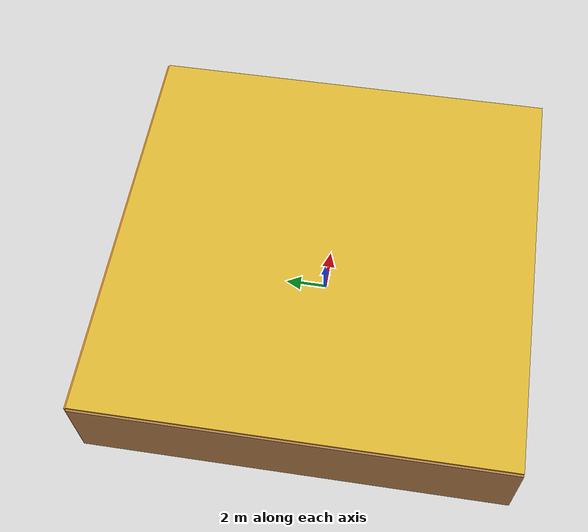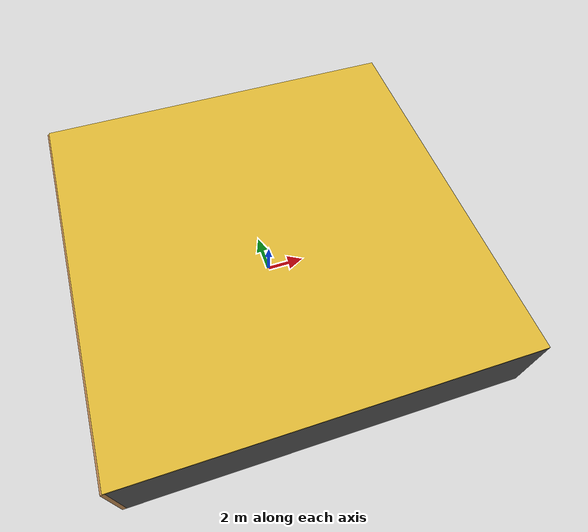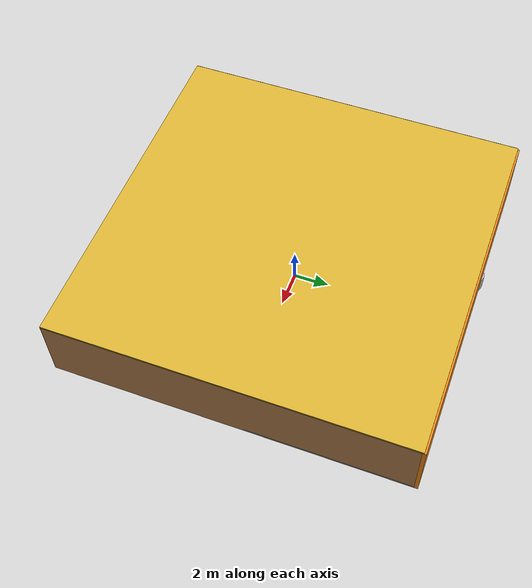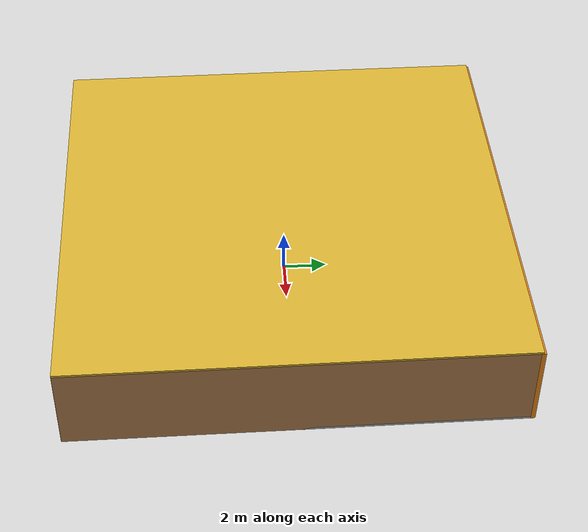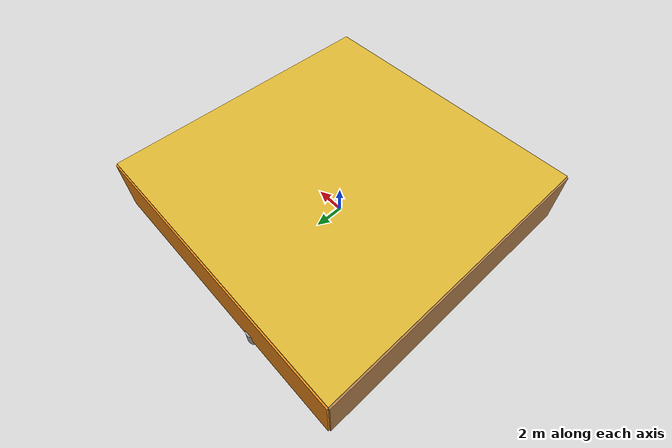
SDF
<sdf version="1.4">
 <world name="default">
  <physics type="ode">
   <max_step_size>0.001</max_step_size>
   <real_time_factor>1</real_time_factor>
   <real_time_update_rate>1000</real_time_update_rate>
   <gravity>0 0 -9.8</gravity>
  </physics>
  <scene><ambient>0.4 0.4 0.4 1</ambient><background>0.7 0.7 0.7 1</background><shadows>1</shadows></scene>
  <model name="Surrounding">
   <static>1</static>
   <link name="Ceiling">
    <collision name="Ceiling_Collision"><geometry><box><size>20 20 0.1</size></box></geometry></collision>
    <visual name="Ceiling_Visual">
     <geometry><box><size>20 20 0.1</size></box></geometry>
     <material>
      <script><uri>file://media/materials/scripts/gazebo.material</uri><name>Gazebo/Gold</name></script>
     </material>
    </visual>
    <pose>0 0 4.05 0 0 0</pose>
   </link>
   <link name="Wall_South">
    <collision name="Wall_South_Collision">
     <geometry><box><size>20 0 4</size></box></geometry>
     <pose>0 0 2 0 -0 0</pose>
    </collision>
    <visual name="Wall_South_Visual">
     <pose>0 0 2 0 -0 0</pose>
     <geometry><box><size>20 0 4</size></box></geometry>
     <material>
      <script><uri>file://media/materials/scripts/gazebo.material</uri><name>Gazebo/Road</name></script>
     </material>
    </visual>
    <velocity_decay><linear>0</linear><angular>0</angular></velocity_decay>
    <pose>0 -10 0 0 -0 0</pose>
   </link>
   <link name="Wall_East">
    <collision name="Wall_21_Collision">
     <geometry><box><size>20 0 4</size></box></geometry>
     <pose>0 0 2 0 -0 0</pose>
    </collision>
    <visual name="Wall_21_Visual">
     <pose>0 0 2 0 -0 0</pose>
     <geometry><box><size>20 0 4</size></box></geometry>
     <material>
      <script><uri>file://media/materials/scripts/gazebo.material</uri><name>Gazebo/Wood</name></script>
     </material>
    </visual>
    <velocity_decay><linear>0</linear><angular>0</angular></velocity_decay>
    <pose>10 0 0 0 -0 1.5708</pose>
   </link>
   <link name="Wall_North">
    <collision name="Wall_22_Collision">
     <geometry><box><size>20 0.2 4</size></box></geometry>
     <pose>0 0 2 0 -0 0</pose>
    </collision>
    <visual name="Wall_22_Visual">
     <pose>0 0 2 0 -0 0</pose>
     <geometry><box><size>20 0.2 4</size></box></geometry>
     <material>
      <script><uri>file://media/materials/scripts/gazebo.material</uri><name>Gazebo/Orange</name></script>
     </material>
    </visual>
    <velocity_decay><linear>0</linear><angular>0</angular></velocity_decay>
    <pose>0 10 0 0 -0 0</pose>
   </link>
   <link name="Wall_West">
    <collision name="Wall_23_Collision">
     <geometry><box><size>20 0.2 4</size></box></geometry>
     <pose>0 0 2 0 -0 0</pose>
    </collision>
    <visual name="Wall_23_Visual">
     <pose>0 0 2 0 -0 0</pose>
     <geometry><box><size>20 0.2 4</size></box></geometry>
     <material>
      <script><uri>file://media/materials/scripts/gazebo.material</uri><name>Gazebo/WoodFloor</name></script>
     </material>
    </visual>
    <velocity_decay><linear>0</linear><angular>0</angular></velocity_decay>
    <pose>-10 0 0 0 0 -1.5708</pose>
   </link>
   <link name="Ground_link">
    <collision name="collision">
     <pose>0 0 .05 0 -0 0</pose>
     <geometry><box><size>20 20 0.1</size></box></geometry>
    </collision>
    <visual name="visual">
     <pose>0 0 .05 0 -0 0</pose>
     <geometry><box><size>20 20 0.1</size></box></geometry>
     <material>
      <script><uri>file://media/materials/scripts/gazebo.material</uri><name>Gazebo/LightOff</name></script>
     </material>
    </visual>
   </link>
   <static>1</static>
  </model>
  <spherical_coordinates>
   <surface_model>EARTH_WGS84</surface_model>
   <latitude_deg>0</latitude_deg>
   <longitude_deg>0</longitude_deg>
   <elevation>0</elevation>
   <heading_deg>0</heading_deg>
  </spherical_coordinates>
  <light name="lightball_0" type="diffuse">
   <diffuse>0.8 0.8 0.8 1</diffuse>
   <specular>0.2 0.2 0.2 1</specular>
   <attenuation>
    <range>100</range>
    <constant>0.7</constant>
    <linear>0.01</linear>
    <quadratic>0.001</quadratic>
   </attenuation>
   <direction>-0.5 0.1 -0.9</direction>
   <pose>-4.8512542708 2.34274263979 1.42264361388 0 0 0</pose>
  </light>
  <include>
   <uri>model://textured_shapes</uri>
   <pose>-2.49579837079 8.38496481314 0 0 0 0.493686292845</pose>
  </include>
  <include>
   <uri>model://robocup_3Dsim_goal</uri>
   <pose>3.64684124709 -8.49933539073 0 0 0 2.86019720703</pose>
  </include>
  <include>
   <uri>model://robocup_3Dsim_goal</uri>
   <pose>4.17585126997 -3.71238143774 0 0 0 2.7336269875</pose>
  </include>
  <include><uri>model://table</uri><pose>3.74402273598 3.39364367079 0 0 0 1.29921858857</pose></include>
  <include>
   <uri>model://textured_shapes</uri>
   <pose>7.15573258531 -1.16906318144 0 0 0 3.13433477314</pose>
  </include>
 </world>
</sdf>

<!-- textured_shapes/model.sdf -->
<sdf version="1.6">
  <model name="textured_shapes">
    <pose>0 0 0.5 0 0 0</pose>
    <link name="box">
      <pose>0 -1.5 0 0 0 0</pose>
      <collision name="collision">
        <geometry>
          <box>
            <size>1 1 1</size>
          </box>
        </geometry>
      </collision>
      <visual name="visual">
        <geometry>
          <box>
            <size>1 1 1</size>
          </box>
        </geometry>
        <material>
          <script>
            <uri>model://../model_source/models/textured_shapes/materials/scripts</uri>
            <uri>model://../model_source/models/textured_shapes/materials/textures</uri>
            <name>TexturedShape/Squares</name>
          </script>
        </material>
      </visual>
    </link>
    <link name="sphere">
      <collision name="collision">
        <geometry>
          <sphere>
            <radius>0.5</radius>
          </sphere>
        </geometry>
      </collision>
      <visual name="visual">
        <geometry>
          <sphere>
            <radius>0.5</radius>
          </sphere>
        </geometry>
        <material>
          <script>
            <uri>model://../model_source/models/textured_shapes/materials/scripts</uri>
            <uri>model://../model_source/models/textured_shapes/materials/textures</uri>
            <name>TexturedShape/Squares</name>
          </script>
        </material>
      </visual>
    </link>
    <link name="cylinder">
      <pose>0 1.5 0 0 0 0</pose>
      <collision name="collision">
        <geometry>
          <cylinder>
            <radius>0.5</radius>
            <length>1</length>
          </cylinder>
        </geometry>
      </collision>
      <visual name="visual">
        <geometry>
          <cylinder>
            <radius>0.5</radius>
            <length>1</length>
          </cylinder>
        </geometry>
        <material>
          <script>
            <uri>model://../model_source/models/textured_shapes/materials/scripts</uri>
            <uri>model://../model_source/models/textured_shapes/materials/textures</uri>
            <name>TexturedShape/Squares</name>
          </script>
        </material>
      </visual>
    </link>
  </model>
</sdf>

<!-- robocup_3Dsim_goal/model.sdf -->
<sdf version="1.5">
  <model name="robocup_3d_goal">
    <static>true</static>
    <link name="left_post">
      <pose>0 1.05 0.45 0 0 0</pose>
      <collision name="collision">
        <geometry>
          <cylinder>
            <radius>0.05</radius>
            <length>0.9</length>
          </cylinder>
        </geometry>
      </collision>
      <visual name="visual">
        <geometry>
          <cylinder>
            <radius>0.05</radius>
            <length>0.9</length>
          </cylinder>
        </geometry>
        <material>
          <script>
            <uri>file://media/materials/scripts/gazebo.material</uri>
            <name>Gazebo/ZincYellow</name>
          </script>
        </material>
      </visual>
    </link>
    <link name="left_support_horiz_lower">
      <pose>0.30 1.05 0.01 0 0 0</pose>
      <collision name="collision">
        <geometry>
          <box>
            <size>0.50 0.02 0.02</size>
          </box>
        </geometry>
      </collision>
      <visual name="visual">
        <geometry>
          <box>
            <size>0.50 0.02 0.02</size>
          </box>
        </geometry>
        <material>
          <script>
            <uri>file://media/materials/scripts/gazebo.material</uri>
            <name>Gazebo/White</name>
          </script>
        </material>
      </visual>
    </link>
    <link name="left_support_horiz_upper">
      <pose>0.30 1.05 0.79 0 0 0</pose>
      <collision name="collision">
        <geometry>
          <box>
            <size>0.50 0.02 0.02</size>
          </box>
        </geometry>
      </collision>
      <visual name="visual">
        <geometry>
          <box>
            <size>0.50 0.02 0.02</size>
          </box>
        </geometry>
        <material>
          <script>
            <uri>file://media/materials/scripts/gazebo.material</uri>
            <name>Gazebo/White</name>
          </script>
        </material>
      </visual>
    </link>
    <link name="left_support_vertical">
      <pose>0.56 1.05 0.4 0 1.5708 0</pose>
      <collision name="collision">
        <geometry>
          <box>
            <size>0.80 0.02 0.02</size>
          </box>
        </geometry>
      </collision>
      <visual name="visual">
        <geometry>
          <box>
            <size>0.80 0.02 0.02</size>
          </box>
        </geometry>
        <material>
          <script>
            <uri>file://media/materials/scripts/gazebo.material</uri>
            <name>Gazebo/White</name>
          </script>
        </material>
      </visual>
    </link>
    <link name="right_support_horiz_lower">
      <pose>0.30 -1.05 0.01 0 0 0</pose>
      <collision name="collision">
        <geometry>
          <box>
            <size>0.50 0.02 0.02</size>
          </box>
        </geometry>
      </collision>
      <visual name="visual">
        <geometry>
          <box>
            <size>0.50 0.02 0.02</size>
          </box>
        </geometry>
        <material>
          <script>
            <uri>file://media/materials/scripts/gazebo.material</uri>
            <name>Gazebo/White</name>
          </script>
        </material>
      </visual>
    </link>
    <link name="right_support_horiz_upper">
      <pose>0.30 -1.05 0.79 0 0 0</pose>
      <collision name="collision">
        <geometry>
          <box>
            <size>0.50 0.02 0.02</size>
          </box>
        </geometry>
      </collision>
      <visual name="visual">
        <geometry>
          <box>
            <size>0.50 0.02 0.02</size>
          </box>
        </geometry>
        <material>
          <script>
            <uri>file://media/materials/scripts/gazebo.material</uri>
            <name>Gazebo/White</name>
          </script>
        </material>
      </visual>
    </link>
    <link name="right_support_vertical">
      <pose>0.56 -1.05 0.4 0 1.5708 0</pose>
      <collision name="collision">
        <geometry>
          <box>
            <size>0.80 0.02 0.02</size>
          </box>
        </geometry>
      </collision>
      <visual name="visual">
        <geometry>
          <box>
            <size>0.80 0.02 0.02</size>
          </box>
        </geometry>
        <material>
          <script>
            <uri>file://media/materials/scripts/gazebo.material</uri>
            <name>Gazebo/White</name>
          </script>
        </material>
      </visual>
    </link>
    <link name="center_support_horiz_lower">
      <pose>0.56 0 0.01 0 1.5708 0</pose>
      <collision name="collision">
        <geometry>
          <box>
            <size>0.02 2.08 0.02</size>
          </box>
        </geometry>
      </collision>
      <visual name="visual">
        <geometry>
          <box>
            <size>0.02 2.08 0.02</size>
          </box>
        </geometry>
        <material>
          <script>
            <uri>file://media/materials/scripts/gazebo.material</uri>
            <name>Gazebo/White</name>
          </script>
        </material>
      </visual>
    </link>
    <link name="center_support_horiz_upper">
      <pose>0.56 0 0.79 0 1.5708 0</pose>
      <collision name="collision">
        <geometry>
          <box>
            <size>0.02 2.08 0.02</size>
          </box>
        </geometry>
      </collision>
      <visual name="visual">
        <geometry>
          <box>
            <size>0.02 2.08 0.02</size>
          </box>
        </geometry>
        <material>
          <script>
            <uri>file://media/materials/scripts/gazebo.material</uri>
            <name>Gazebo/White</name>
          </script>
        </material>
      </visual>
    </link>
    <link name="right_post">
      <pose>0 -1.05 0.45 0 0 0</pose>
      <collision name="collision">
        <geometry>
          <cylinder>
            <radius>0.05</radius>
            <length>0.9</length>
          </cylinder>
        </geometry>
      </collision>
      <visual name="visual">
        <geometry>
          <cylinder>
            <radius>0.05</radius>
            <length>0.9</length>
          </cylinder>
        </geometry>
        <material>
          <script>
            <uri>file://media/materials/scripts/gazebo.material</uri>
            <name>Gazebo/ZincYellow</name>
          </script>
        </material>
      </visual>
    </link>
    <link name="crossbar">
      <pose>0 0 0.85 1.57 1.57 0</pose>
      <collision name="collision">
        <geometry>
          <cylinder>
            <radius>0.05</radius>
            <length>2.0</length>
          </cylinder>
        </geometry>
      </collision>
      <visual name="visual">
        <geometry>
          <cylinder>
            <radius>0.05</radius>
            <length>2.0</length>
          </cylinder>
        </geometry>
        <material>
          <script>
            <uri>file://media/materials/scripts/gazebo.material</uri>
            <name>Gazebo/ZincYellow</name>
          </script>
        </material>
      </visual>
    </link>
    <link name="center_net">
      <pose>0.56 0 0.40 0 0 0</pose>
      <collision name="collision">
        <geometry>
          <box>
            <size>0.01 2.1 0.80</size>
          </box>
        </geometry>
      </collision>
      <visual name="visual">
        <geometry>
          <box>
            <size>0.01 2.1 0.80</size>
          </box>
        </geometry>
        <material>
          <script>
            <uri>model://../model_source/models/robocup09_spl_field/materials/scripts/</uri>
            <uri>model://../model_source/models/robocup09_spl_field/materials/textures/</uri>
            <name>RoboCup/Net</name>
          </script>
        </material>
      </visual>
    </link>
    <link name="left_net">
      <pose>0.30 1.05 0.40 0 0 0</pose>
      <collision name="collision">
        <geometry>
          <box>
            <size>0.50 0.01 0.76</size>
          </box>
        </geometry>
      </collision>
      <visual name="visual">
        <geometry>
          <box>
            <size>0.50 0.01 0.76</size>
          </box>
        </geometry>
        <material>
          <script>
            <uri>model://../model_source/models/robocup09_spl_field/materials/scripts/</uri>
            <uri>model://../model_source/models/robocup09_spl_field/materials/textures/</uri>
            <name>RoboCup/Net</name>
          </script>
        </material>
      </visual>
    </link>
    <link name="right_net">
      <pose>0.30 -1.05 0.40 0 0 0</pose>
      <collision name="collision">
        <geometry>
          <box>
            <size>0.50 0.01 0.76</size>
          </box>
        </geometry>
      </collision>
      <visual name="visual">
        <geometry>
          <box>
            <size>0.50 0.01 0.76</size>
          </box>
        </geometry>
        <material>
          <script>
            <uri>model://../model_source/models/robocup09_spl_field/materials/scripts/</uri>
            <uri>model://../model_source/models/robocup09_spl_field/materials/textures/</uri>
            <name>RoboCup/Net</name>
          </script>
        </material>
      </visual>
    </link>
  </model>
</sdf>

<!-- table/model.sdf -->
<sdf version="1.5">
  <model name="table">
    <static>true</static>
    <link name="link">
      <collision name="surface">
        <pose>0 0 1.0 0 0 0</pose>
        <geometry>
          <box>
            <size>1.5 0.8 0.03</size>
          </box>
        </geometry>
        <surface>
          <friction>
            <ode>
              <mu>0.6</mu>
              <mu2>0.6</mu2>
            </ode>
          </friction>
        </surface>
      </collision>
      <visual name="visual1">
        <pose>0 0 1.0 0 0 0</pose>
        <geometry>
          <box>
            <size>1.5 0.8 0.03</size>
          </box>
        </geometry>
        <material>
          <script>
            <uri>model://media/materials/scripts/gazebo.material</uri>
            <name>Gazebo/Wood</name>
          </script>
        </material>
      </visual>
      <collision name="front_left_leg">
        <pose>0.68 0.38 0.5 0 0 0</pose>
        <geometry>
          <cylinder>
            <radius>0.02</radius>
            <length>1.0</length>
          </cylinder>
        </geometry>
      </collision>
      <visual name="front_left_leg">
        <pose>0.68 0.38 0.5 0 0 0</pose>
        <geometry>
          <cylinder>
            <radius>0.02</radius>
            <length>1.0</length>
          </cylinder>
        </geometry>
        <material>
          <script>
            <uri>model://media/materials/scripts/gazebo.material</uri>
            <name>Gazebo/Grey</name>
          </script>
        </material>
      </visual>
      <collision name="front_right_leg">
        <pose>0.68 -0.38 0.5 0 0 0</pose>
        <geometry>
          <cylinder>
            <radius>0.02</radius>
            <length>1.0</length>
          </cylinder>
        </geometry>
      </collision>
      <visual name="front_right_leg">
        <pose>0.68 -0.38 0.5 0 0 0</pose>
        <geometry>
          <cylinder>
            <radius>0.02</radius>
            <length>1.0</length>
          </cylinder>
        </geometry>
        <material>
          <script>
            <uri>model://media/materials/scripts/gazebo.material</uri>
            <name>Gazebo/Grey</name>
          </script>
        </material>
      </visual>
      <collision name="back_right_leg">
        <pose>-0.68 -0.38 0.5 0 0 0</pose>
        <geometry>
          <cylinder>
            <radius>0.02</radius>
            <length>1.0</length>
          </cylinder>
        </geometry>
      </collision>
      <visual name="back_right_leg">
        <pose>-0.68 -0.38 0.5 0 0 0</pose>
        <geometry>
          <cylinder>
            <radius>0.02</radius>
            <length>1.0</length>
          </cylinder>
        </geometry>
        <material>
          <script>
            <uri>model://media/materials/scripts/gazebo.material</uri>
            <name>Gazebo/Grey</name>
          </script>
        </material>
      </visual>
      <collision name="back_left_leg">
        <pose>-0.68 0.38 0.5 0 0 0</pose>
        <geometry>
          <cylinder>
            <radius>0.02</radius>
            <length>1.0</length>
          </cylinder>
        </geometry>
      </collision>
      <visual name="back_left_leg">
        <pose>-0.68 0.38 0.5 0 0 0</pose>
        <geometry>
          <cylinder>
            <radius>0.02</radius>
            <length>1.0</length>
          </cylinder>
        </geometry>
        <material>
          <script>
            <uri>model://media/materials/scripts/gazebo.material</uri>
            <name>Gazebo/Grey</name>
          </script>
        </material>
      </visual>
    </link>
  </model>
</sdf>
